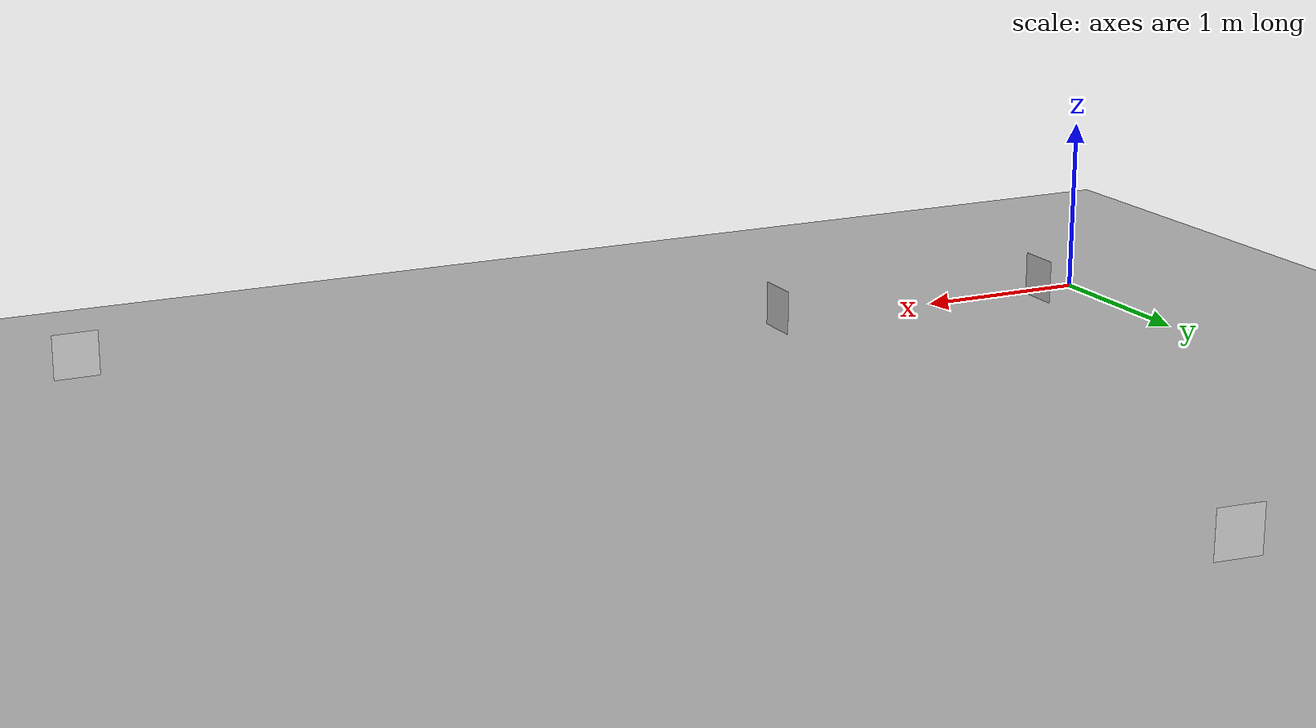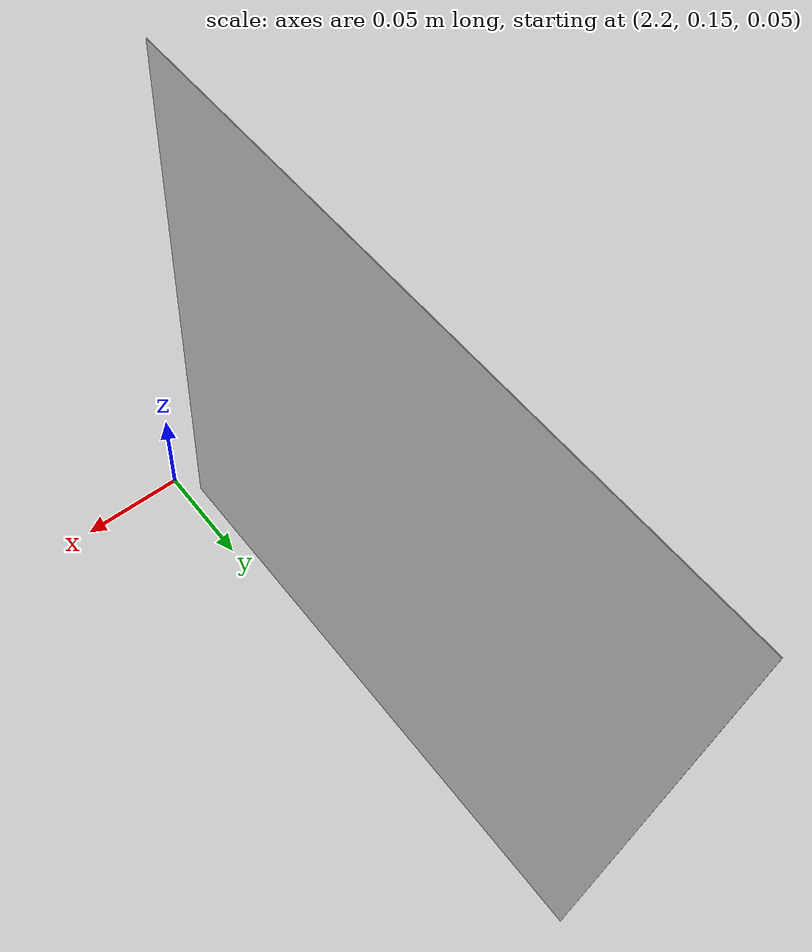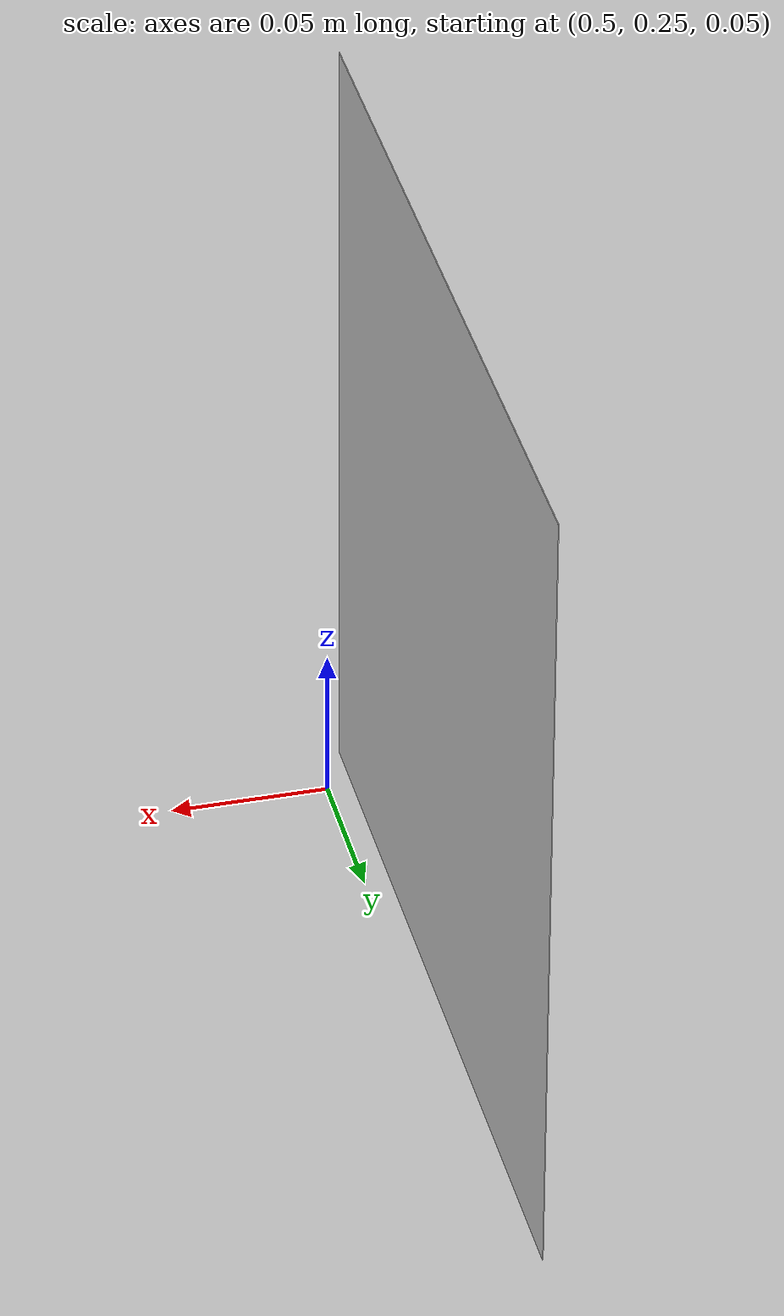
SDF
<sdf version="1.4">
 <world name="default">
  <include><uri>model://sun</uri></include>
  <include><uri>model://ground_plane</uri></include>
  <include>
   <uri>model://qr_livingroom</uri>
   <name>qr_livingroom</name>
   <pose>0.5 0.39 0.2 0 1.57 3.14</pose>
  </include>
  <include><uri>model://qr_kitchen</uri><name>qr_kitchen</name><pose>6 -0.5 0.2 0 1.57 -1.57</pose></include>
  <include><uri>model://qr_bedroom</uri><name>qr_bedroom</name><pose>2.2 0.3 0.2 0 1.57 3.14</pose></include>
  <include><uri>model://qr_corridor</uri><name>qr_corridor</name><pose>2.1 4.3 0.2 0 1.57 1.48</pose></include>
 </world>
</sdf>

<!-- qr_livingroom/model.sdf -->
<sdf version="1.6">
  <model name="qr_livingroom">
    <static>true</static>
    <link name="link">
      <visual name="visual">
        <geometry>
          <plane>
            <size>0.25 0.25</size>
          </plane>
        </geometry>
        <material>
          <script>
            <uri>model://qr_livingroom/materials/scripts</uri>
            <uri>model://qr_livingroom/materials/textures</uri>
            <name>QRLivingroomMaterial</name>
          </script>
        </material>
      </visual>
    </link>
  </model>
</sdf>

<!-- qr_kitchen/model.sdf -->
<sdf version="1.6">
  <model name="qr_kitchen">
    <static>true</static>
    <link name="link">
      <visual name="visual">
        <geometry>
          <plane>
            <size>0.25 0.25</size>
          </plane>
        </geometry>
        <material>
          <script>
            <uri>model://qr_kitchen/materials/scripts</uri>
            <uri>model://qr_kitchen/materials/textures</uri>
            <name>QRKitchenMaterial</name>
          </script>
        </material>
      </visual>
    </link>
  </model>
</sdf>

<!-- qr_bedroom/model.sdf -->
<sdf version="1.6">
  <model name="qr_bedroom">
    <static>true</static>
    <link name="link">
      <visual name="visual">
        <geometry>
          <plane>
            <size>0.25 0.25</size>
          </plane>
        </geometry>
        <material>
          <script>
            <uri>model://qr_bedroom/materials/scripts</uri>
            <uri>model://qr_bedroom/materials/textures</uri>
            <name>QRBedroomMaterial</name>
          </script>
        </material>
      </visual>
    </link>
  </model>
</sdf>

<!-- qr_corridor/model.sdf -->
<sdf version="1.6">
  <model name="qr_corridor">
    <static>true</static>
    <link name="link">
      <visual name="visual">
        <geometry>
          <plane>
            <size>0.25 0.25</size>
          </plane>
        </geometry>
        <material>
          <script>
            <uri>model://qr_corridor/materials/scripts</uri>
            <uri>model://qr_corridor/materials/textures</uri>
            <name>QRCorridorMaterial</name>
          </script>
        </material>
      </visual>
    </link>
  </model>
</sdf>
